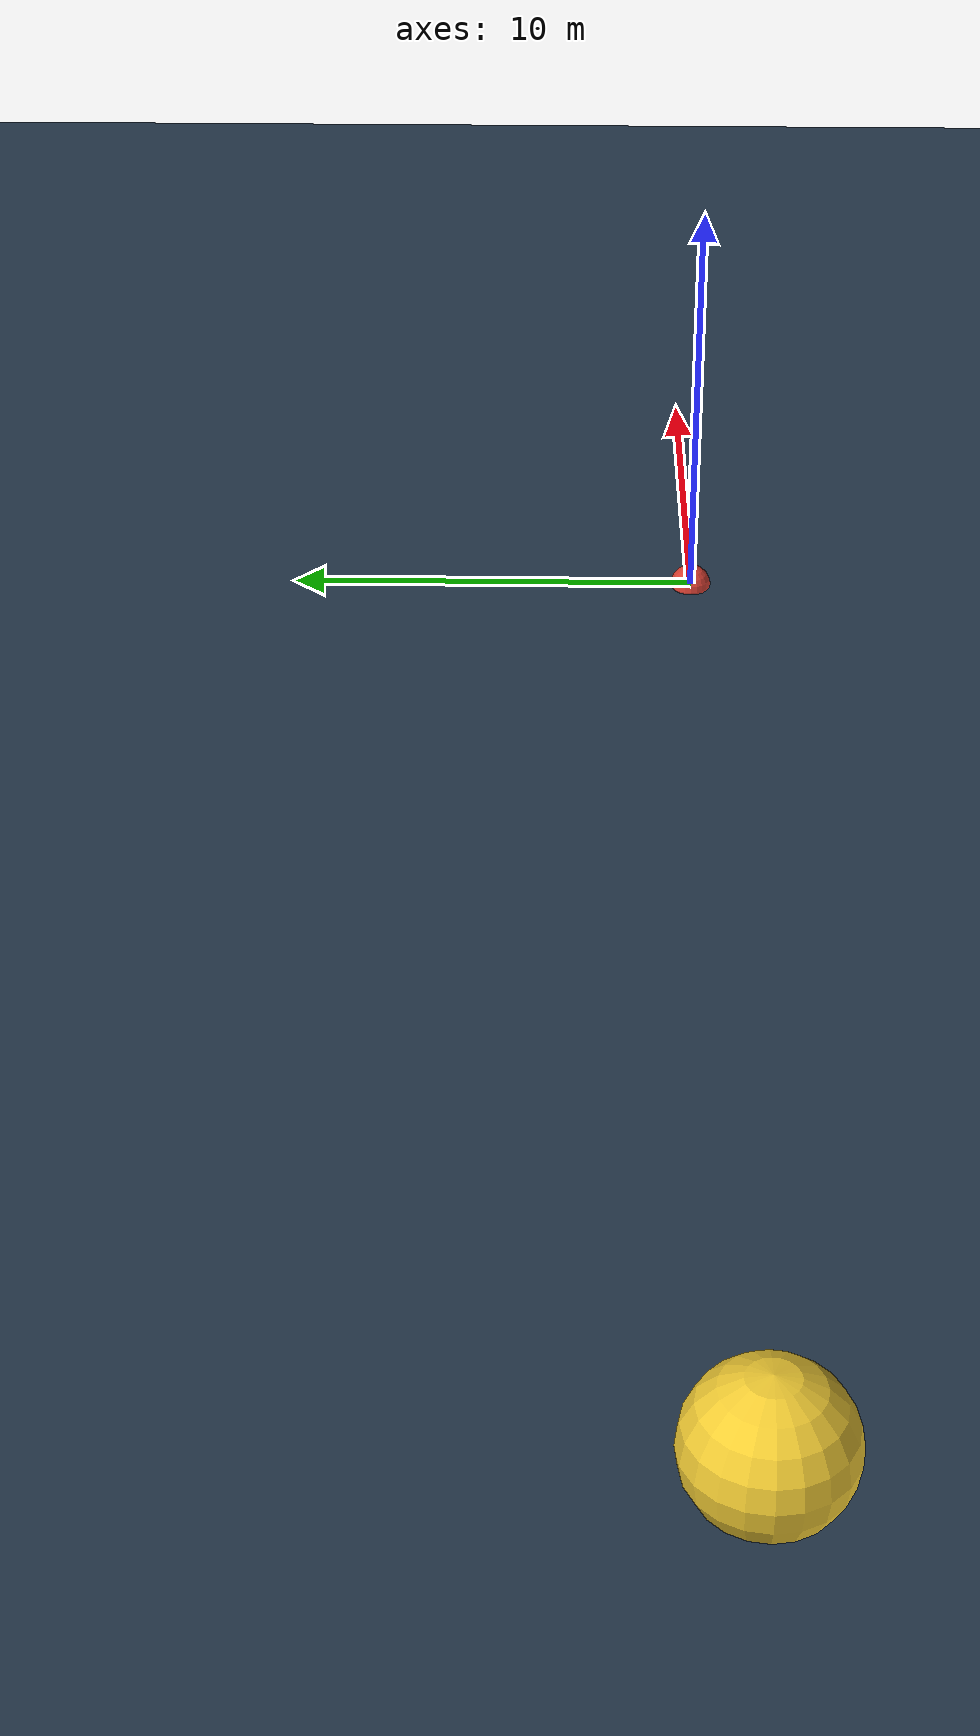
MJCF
<mujoco model="pursuit_evasion">
  <compiler angle="radian"/>
  <option timestep="0.02" integrator="RK4" gravity="0 0 0"/>
  <visual>
    <global offwidth="1280" offheight="720"/>
    <headlight diffuse="0.6 0.6 0.6" ambient="0.3 0.3 0.3"/>
  </visual>
  <asset>
    <texture name="grid" type="2d" builtin="checker" rgb1="0.2 0.3 0.4" rgb2="0.1 0.15 0.2"
             width="512" height="512"/>
    <material name="grid" texture="grid" texrepeat="8 8" reflectance="0.1"/>
  </asset>
  <worldbody>
    <geom name="floor" type="plane" size="40.0 40.0 0.1" material="grid" pos="0 0 0"/>
    <light pos="0 0 20.0" dir="0 0 -1" directional="true"/>

    <body name="pursuer0_x" pos="0 0 0">
      <joint name="pursuer0_x" type="slide" axis="1 0 0" range="-40.0 40.0" damping="4.0" ref="0.0"/>
      <inertial pos="0 0 0" mass="1e-3" diaginertia="1e-5 1e-5 1e-5"/>
      <body name="pursuer0_y" pos="0 0 0">
        <joint name="pursuer0_y" type="slide" axis="0 1 0" range="-40.0 40.0" damping="4.0" ref="0.0"/>
        <inertial pos="0 0 0" mass="1e-3" diaginertia="1e-5 1e-5 1e-5"/>
        <body name="pursuer0_z" pos="0 0 0">
          <joint name="pursuer0_z" type="slide" axis="0 0 1" range="0.5 20.0" damping="4.0" ref="0.0"/>
          <geom name="pursuer0" type="sphere" size="0.5" mass="1.0"
                rgba="0.85 0.25 0.20 1" contype="0" conaffinity="0"/>
          <site name="pursuer0_site" pos="0 0 0" size="0.05"/>
        </body>
      </body>
    </body>
    <body name="pursuer1_x" pos="0 0 0">
      <joint name="pursuer1_x" type="slide" axis="1 0 0" range="-40.0 40.0" damping="4.0" ref="0.0"/>
      <inertial pos="0 0 0" mass="1e-3" diaginertia="1e-5 1e-5 1e-5"/>
      <body name="pursuer1_y" pos="0 0 0">
        <joint name="pursuer1_y" type="slide" axis="0 1 0" range="-40.0 40.0" damping="4.0" ref="0.0"/>
        <inertial pos="0 0 0" mass="1e-3" diaginertia="1e-5 1e-5 1e-5"/>
        <body name="pursuer1_z" pos="0 0 0">
          <joint name="pursuer1_z" type="slide" axis="0 0 1" range="0.5 20.0" damping="4.0" ref="0.0"/>
          <geom name="pursuer1" type="sphere" size="0.5" mass="1.0"
                rgba="0.85 0.25 0.20 1" contype="0" conaffinity="0"/>
          <site name="pursuer1_site" pos="0 0 0" size="0.05"/>
        </body>
      </body>
    </body>
    <body name="evader0_x" pos="0 0 0">
      <joint name="evader0_x" type="slide" axis="1 0 0" range="-40.0 40.0" damping="4.0" ref="0.0"/>
      <inertial pos="0 0 0" mass="1e-3" diaginertia="1e-5 1e-5 1e-5"/>
      <body name="evader0_y" pos="0 0 0">
        <joint name="evader0_y" type="slide" axis="0 1 0" range="-40.0 40.0" damping="4.0" ref="0.0"/>
        <inertial pos="0 0 0" mass="1e-3" diaginertia="1e-5 1e-5 1e-5"/>
        <body name="evader0_z" pos="0 0 0">
          <joint name="evader0_z" type="slide" axis="0 0 1" range="0.5 20.0" damping="4.0" ref="0.0"/>
          <geom name="evader0" type="sphere" size="0.5" mass="1.0"
                rgba="0.20 0.55 0.85 1" contype="0" conaffinity="0"/>
          <site name="evader0_site" pos="0 0 0" size="0.05"/>
        </body>
      </body>
    </body>
    <body name="evader1_x" pos="0 0 0">
      <joint name="evader1_x" type="slide" axis="1 0 0" range="-40.0 40.0" damping="4.0" ref="0.0"/>
      <inertial pos="0 0 0" mass="1e-3" diaginertia="1e-5 1e-5 1e-5"/>
      <body name="evader1_y" pos="0 0 0">
        <joint name="evader1_y" type="slide" axis="0 1 0" range="-40.0 40.0" damping="4.0" ref="0.0"/>
        <inertial pos="0 0 0" mass="1e-3" diaginertia="1e-5 1e-5 1e-5"/>
        <body name="evader1_z" pos="0 0 0">
          <joint name="evader1_z" type="slide" axis="0 0 1" range="0.5 20.0" damping="4.0" ref="0.0"/>
          <geom name="evader1" type="sphere" size="0.5" mass="1.0"
                rgba="0.20 0.55 0.85 1" contype="0" conaffinity="0"/>
          <site name="evader1_site" pos="0 0 0" size="0.05"/>
        </body>
      </body>
    </body>
    <body name="asset" mocap="true" pos="-32.0 0.0 1.5">
      <geom name="asset" type="sphere" size="1.6" rgba="0.95 0.80 0.20 1"
            contype="0" conaffinity="0"/>
      <site name="asset_site" pos="0 0 0" size="0.05"/>
    </body>
  </worldbody>
  <actuator>
    <motor name="pursuer0_x" joint="pursuer0_x" gear="30.0" ctrlrange="-1 1"/>
    <motor name="pursuer0_y" joint="pursuer0_y" gear="30.0" ctrlrange="-1 1"/>
    <motor name="pursuer0_z" joint="pursuer0_z" gear="30.0" ctrlrange="-1 1"/>
    <motor name="pursuer1_x" joint="pursuer1_x" gear="30.0" ctrlrange="-1 1"/>
    <motor name="pursuer1_y" joint="pursuer1_y" gear="30.0" ctrlrange="-1 1"/>
    <motor name="pursuer1_z" joint="pursuer1_z" gear="30.0" ctrlrange="-1 1"/>
    <motor name="evader0_x" joint="evader0_x" gear="44.0" ctrlrange="-1 1"/>
    <motor name="evader0_y" joint="evader0_y" gear="44.0" ctrlrange="-1 1"/>
    <motor name="evader0_z" joint="evader0_z" gear="44.0" ctrlrange="-1 1"/>
    <motor name="evader1_x" joint="evader1_x" gear="44.0" ctrlrange="-1 1"/>
    <motor name="evader1_y" joint="evader1_y" gear="44.0" ctrlrange="-1 1"/>
    <motor name="evader1_z" joint="evader1_z" gear="44.0" ctrlrange="-1 1"/>
  </actuator>
</mujoco>
